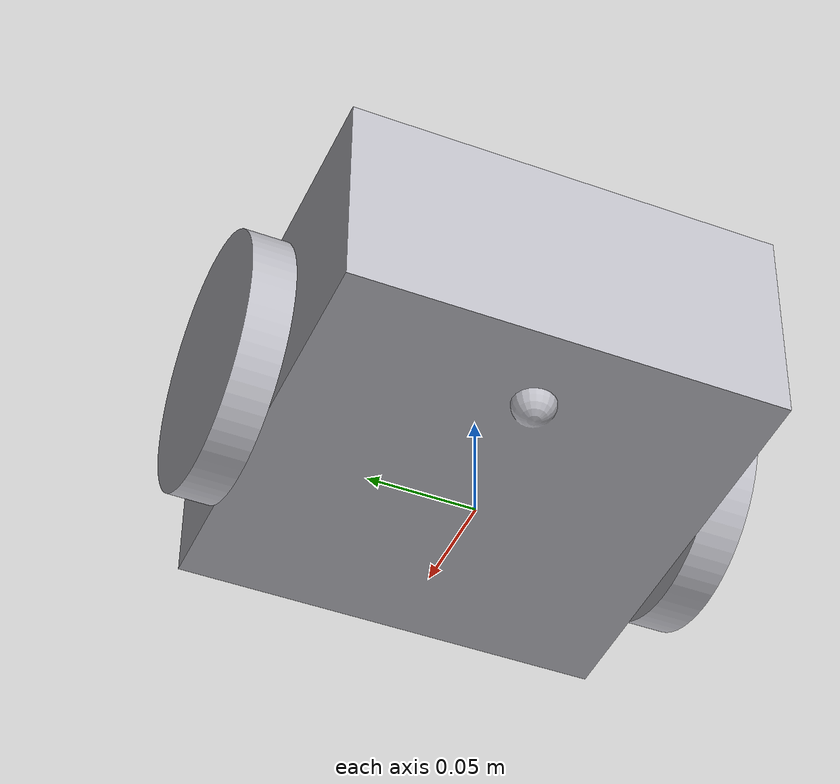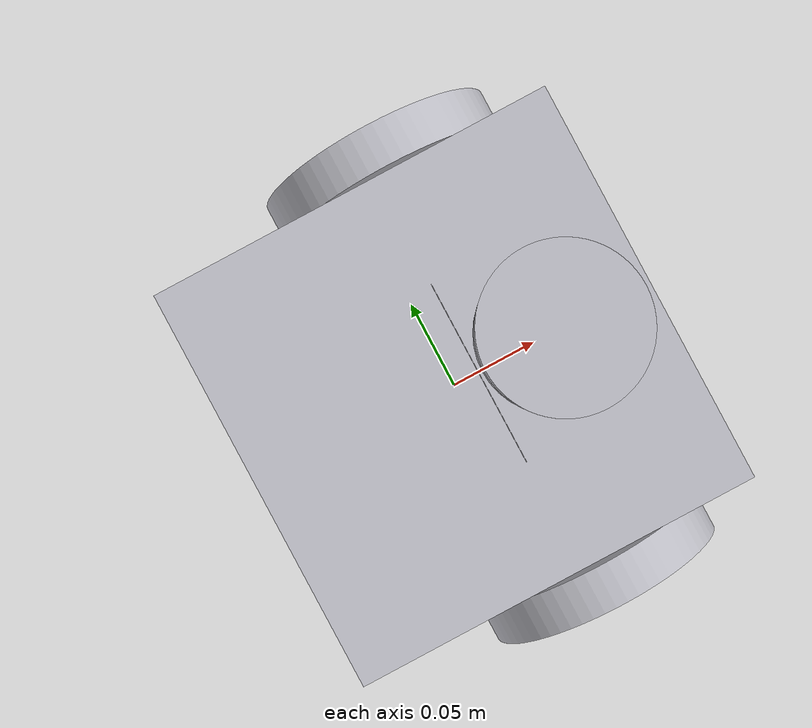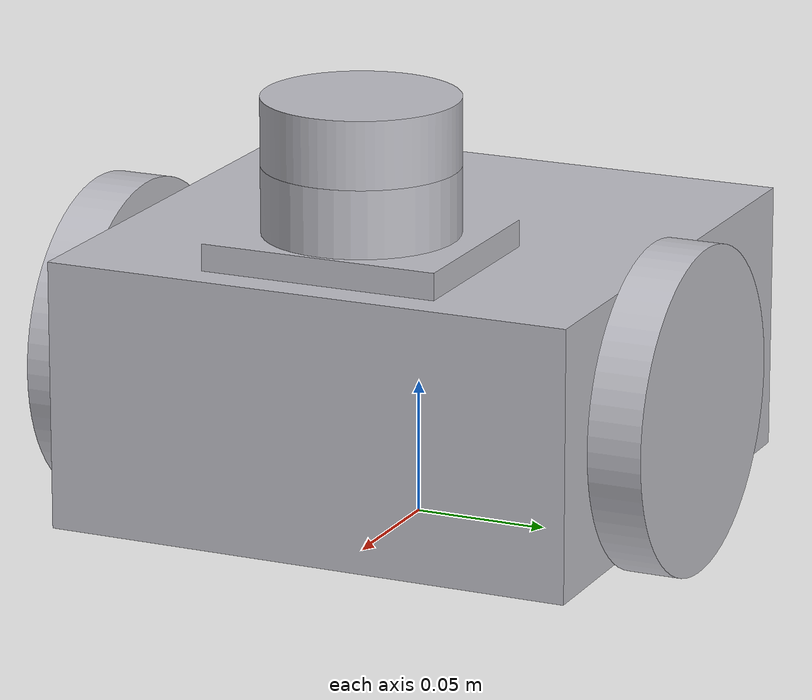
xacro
<?xml version="1.0" ?>
<robot name="bot" xmlns:xacro="http://www.ros.org/wiki/xacro">

<xacro:include filename="$(find bot_description)/urdf/materials.xacro" />
<xacro:include filename="$(find bot_description)/urdf/bot.trans" />
<xacro:include filename="$(find bot_description)/urdf/bot.gazebo" />
<link name="base_link">
  <inertial>
    <origin xyz="0.0019988554986570734 -1.3222279788666387e-08 0.06263210787557169" rpy="0 0 0"/>
    <mass value="4.421664916903425"/>
    <inertia ixx="0.018516" iyy="0.01894" izz="0.028858" ixy="-0.0" iyz="-0.0" ixz="-0.000572"/>
  </inertial>
  <visual>
    <origin xyz="0 0 0" rpy="0 0 0"/>
    <geometry>
      <mesh filename="package://bot_description/meshes/base_link.stl" scale="0.001 0.001 0.001"/>
    </geometry>
    <material name="silver"/>
  </visual>
  <collision>
    <origin xyz="0 0 0" rpy="0 0 0"/>
    <geometry>
      <mesh filename="package://bot_description/meshes/base_link.stl" scale="0.001 0.001 0.001"/>
    </geometry>
  </collision>
</link>

<link name="right_wheel_1">
  <inertial>
    <origin xyz="2.2204460492503132e-17 -0.010000000000000009 1.3877787807814457e-17" rpy="0 0 0"/>
    <mass value="0.21036104408437248"/>
    <inertia ixx="0.000196" iyy="0.000379" izz="0.000196" ixy="-0.0" iyz="-0.0" ixz="0.0"/>
  </inertial>
  <visual>
    <origin xyz="-0.0 0.1 -0.06" rpy="0 0 0"/>
    <geometry>
      <mesh filename="package://bot_description/meshes/right_wheel_1.stl" scale="0.001 0.001 0.001"/>
    </geometry>
    <material name="silver"/>
  </visual>
  <collision>
    <origin xyz="-0.0 0.1 -0.06" rpy="0 0 0"/>
    <geometry>
      <mesh filename="package://bot_description/meshes/right_wheel_1.stl" scale="0.001 0.001 0.001"/>
    </geometry>
  </collision>
</link>

<link name="left_wheel_1">
  <inertial>
    <origin xyz="2.2204460492503132e-17 0.010000000000000009 1.3877787807814457e-17" rpy="0 0 0"/>
    <mass value="0.21036104408437248"/>
    <inertia ixx="0.000196" iyy="0.000379" izz="0.000196" ixy="0.0" iyz="0.0" ixz="0.0"/>
  </inertial>
  <visual>
    <origin xyz="-0.0 -0.1 -0.06" rpy="0 0 0"/>
    <geometry>
      <mesh filename="package://bot_description/meshes/left_wheel_1.stl" scale="0.001 0.001 0.001"/>
    </geometry>
    <material name="silver"/>
  </visual>
  <collision>
    <origin xyz="-0.0 -0.1 -0.06" rpy="0 0 0"/>
    <geometry>
      <mesh filename="package://bot_description/meshes/left_wheel_1.stl" scale="0.001 0.001 0.001"/>
    </geometry>
  </collision>
</link>

<link name="lidar_1">
  <inertial>
    <origin xyz="6.938893903907228e-18 -5.5845130209510275e-18 0.012499999999999983" rpy="0 0 0"/>
    <mass value="0.10789485809488791"/>
    <inertia ixx="4.1e-05" iyy="4.1e-05" izz="7e-05" ixy="-0.0" iyz="0.0" ixz="0.0"/>
  </inertial>
  <visual>
    <origin xyz="-0.05 -0.0 -0.145" rpy="0 0 0"/>
    <geometry>
      <mesh filename="package://bot_description/meshes/lidar_1.stl" scale="0.001 0.001 0.001"/>
    </geometry>
    <material name="silver"/>
  </visual>
  <collision>
    <origin xyz="-0.05 -0.0 -0.145" rpy="0 0 0"/>
    <geometry>
      <mesh filename="package://bot_description/meshes/lidar_1.stl" scale="0.001 0.001 0.001"/>
    </geometry>
  </collision>
</link>

<joint name="Revolute1" type="continuous">
  <origin xyz="0.02 -0.1 0.06" rpy="0 0 0"/>
  <parent link="base_link"/>
  <child link="right_wheel_1"/>
  <axis xyz="0.0 1.0 0.0"/>
</joint>

<joint name="Revolute2" type="continuous">
  <origin xyz="0.02 0.1 0.06" rpy="0 0 0"/>
  <parent link="base_link"/>
  <child link="left_wheel_1"/>
  <axis xyz="0.0 1.0 0.0"/>
</joint>

<joint name="Rigid 3" type="fixed">
  <origin xyz="0.05 0.0 0.145" rpy="0 0 0"/>
  <parent link="base_link"/>
  <child link="lidar_1"/>
</joint>

</robot>

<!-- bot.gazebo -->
<robot name="bot" xmlns:xacro="http://www.ros.org/wiki/xacro" >

<xacro:property name="body_color" value="Gazebo/Silver" />

<gazebo>
  <plugin name="control" filename="libgazebo_ros_control.so"/>
</gazebo>
<gazebo reference="base_link">
  <material>${body_color}</material>
  <mu1>0.1</mu1>
  <mu2>0.1</mu2>
  <selfCollide>true</selfCollide>
  <gravity>true</gravity>
</gazebo>

<gazebo reference="right_wheel_1">
  <material>${body_color}</material>
  <mu1>1500</mu1>
  <mu2>1500</mu2>
  <selfCollide>true</selfCollide>
</gazebo>

<gazebo reference="left_wheel_1">
  <material>${body_color}</material>
  <mu1>1500</mu1>
  <mu2>1500</mu2>
  <selfCollide>true</selfCollide>
</gazebo>

<gazebo reference="lidar_1">
  <material>${body_color}</material>
  <mu1>0.2</mu1>
  <mu2>0.2</mu2>
  <selfCollide>true</selfCollide>
</gazebo>

<gazebo>
  <plugin name="differential_drive_controller" filename="libgazebo_ros_diff_drive.so">

    <!-- Plugin update rate in Hz -->
    <updateRate>100</updateRate>

    <!-- Name of left joint, defaults to `left_joint` -->
    <leftJoint>Revolute2</leftJoint>

    <!-- Name of right joint, defaults to `right_joint` -->
    <rightJoint>Revolute1</rightJoint>

    <!-- The distance from the center of one wheel to the other, in meters, defaults to 0.34 m -->
    <wheelSeparation>0.20</wheelSeparation>

    <!-- Diameter of the wheels, in meters, defaults to 0.15 m -->
    <wheelDiameter>0.12</wheelDiameter>

    <!-- Wheel acceleration, in rad/s^2, defaults to 0.0 rad/s^2 -->
    <wheelAcceleration>1.0</wheelAcceleration>

    <!-- Maximum torque which the wheels can produce, in Nm, defaults to 5 Nm -->
    <wheelTorque>50</wheelTorque>

    <!-- Topic to receive geometry_msgs/Twist message commands, defaults to `cmd_vel` -->
    <commandTopic>cmd_vel</commandTopic>

    <!-- Topic to publish nav_msgs/Odometry messages, defaults to `odom` -->
    <odometryTopic>odom</odometryTopic>

    <!-- Odometry frame, defaults to `odom` -->
    <odometryFrame>odom</odometryFrame>

    <!-- Robot frame to calculate odometry from, defaults to `base_footprint` -->
    <robotBaseFrame>base_link</robotBaseFrame>

    <!-- Odometry source, 0 for ENCODER, 1 for WORLD, defaults to WORLD -->
    <odometrySource>1</odometrySource>

    <!-- Set to true to publish transforms for the wheel links, defaults to false -->
    <publishWheelTF>false</publishWheelTF>

    <!-- Set to true to publish transforms for the odometry, defaults to true -->
    <publishOdom>true</publishOdom>

    <!-- Set to true to publish sensor_msgs/JointState on /joint_states for the wheel joints, defaults to false -->
    <publishWheelJointState>false</publishWheelJointState>

    <!-- Set to true to swap right and left wheels, defaults to true -->
    <legacyMode>false</legacyMode>
  </plugin>
</gazebo>
  <!-- hokuyo -->
  <gazebo reference="lidar_1">
     <sensor type="ray" name="head_hokuyo_sensor">
      <pose>0 0 0 0 0 0</pose>
      <visualize>true</visualize>
      <update_rate>40</update_rate>
      <ray>
        <scan>
          <horizontal>
            <samples>720</samples>
            <resolution>1</resolution>
            <min_angle>-1.570796</min_angle>
            <max_angle>1.570796</max_angle>

          </horizontal>
        </scan>
        <range>
          <min>0.10</min>
          <max>30.0</max>
          <resolution>0.01</resolution>
        </range>
        <noise>
          <type>gaussian</type>
          <mean>0.0</mean>
          <stddev>0.01</stddev>
        </noise>
      </ray>
       <plugin name="gazebo_ros_head_hokuyo_controller" filename="libgazebo_ros_laser.so">
        <topicName>/scan</topicName>
        <frameName>lidar_1</frameName>
      </plugin>
    </sensor>
  </gazebo>
</robot>
